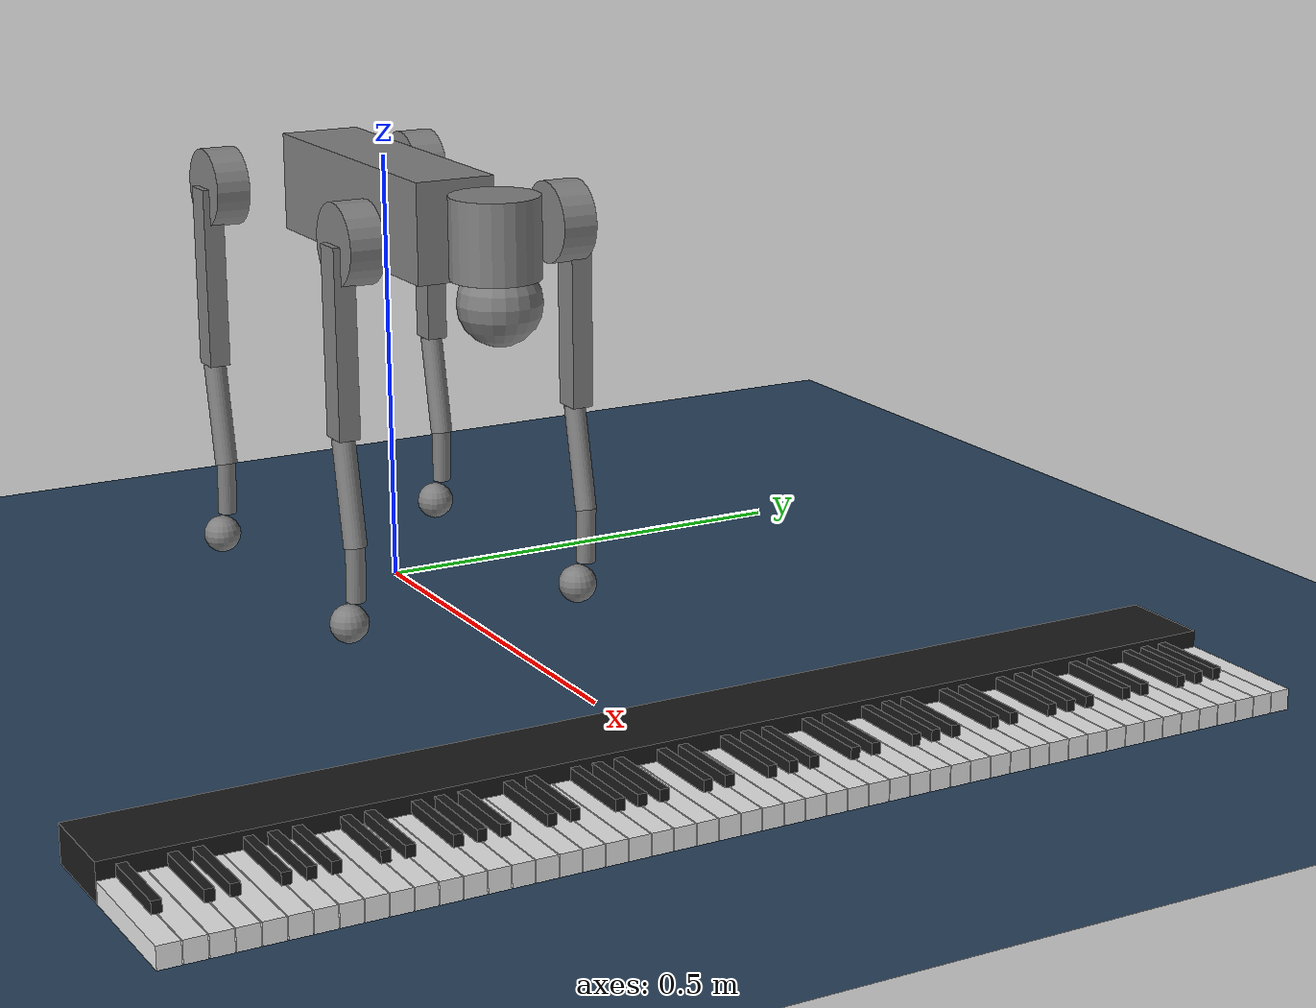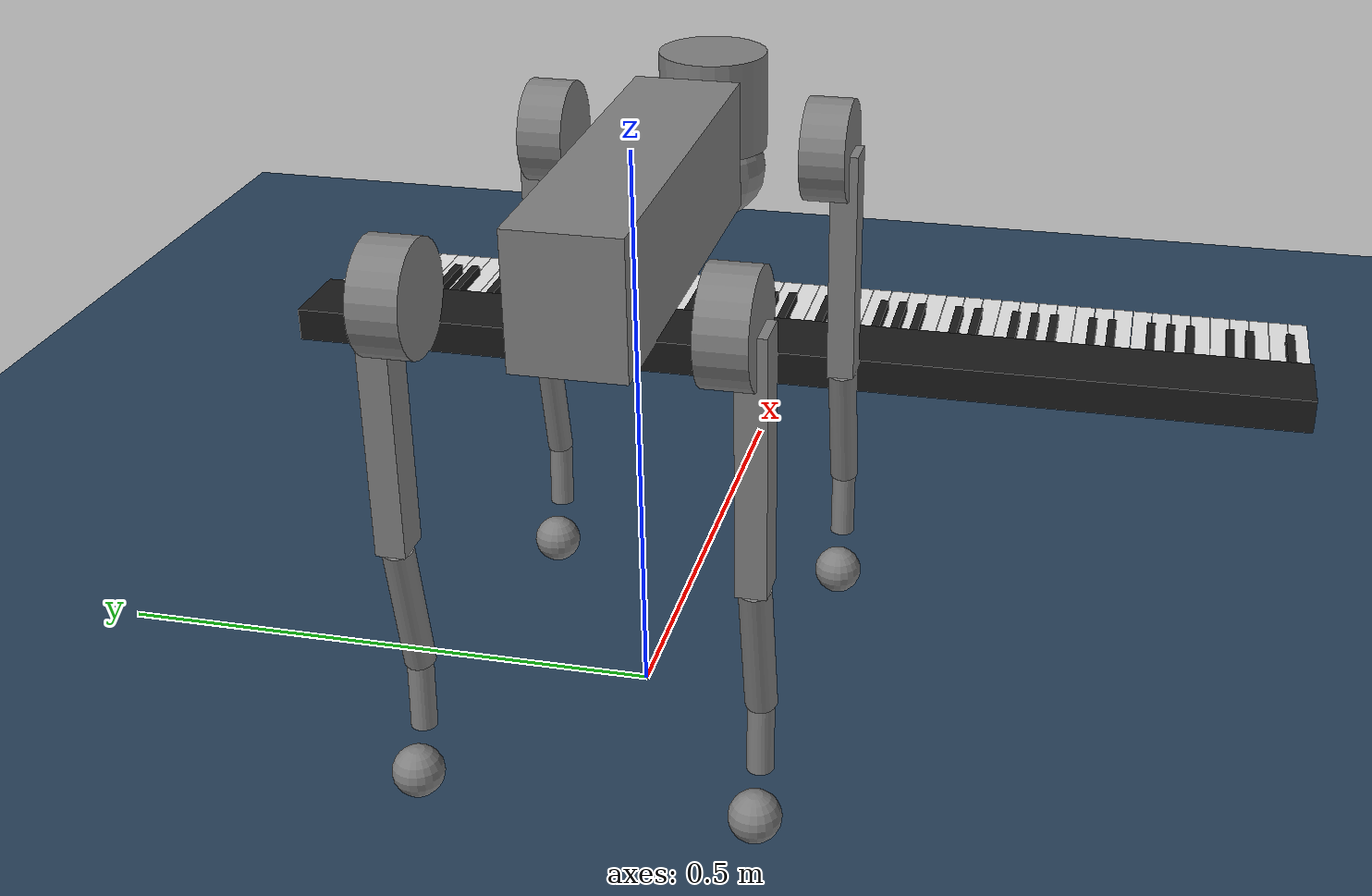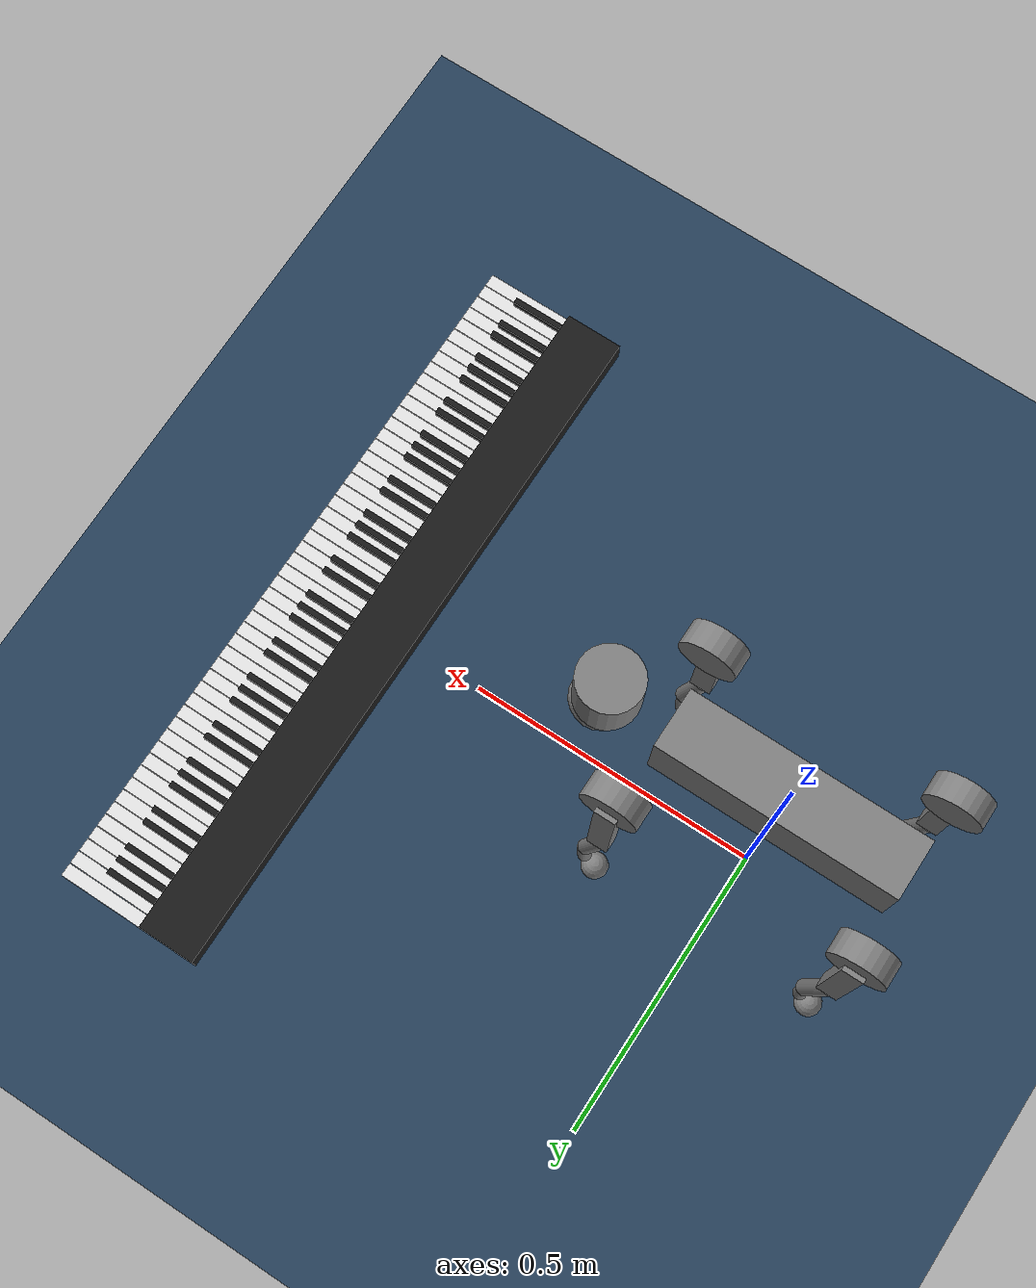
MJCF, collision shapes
<mujoco model="paws_with_piano">
  <!-- Visual settings -->
  <visual>
    <headlight diffuse="0.6 0.6 0.6" ambient="0.3 0.3 0.3" specular="0 0 0"/>
    <rgba haze="0.15 0.25 0.35 1"/>
    <global azimuth="-130" elevation="-20"/>
  </visual>

  <statistic center="0 0 0.1" extent="1"/>

  <option gravity="0 0 -9.81" timestep="0.002" integrator="RK4"/>

  <!-- Compiler and assets directory -->
  <compiler angle="radian" meshdir="../unitree_go2/assets" autolimits="true"/>

  <!-- Default settings for piano and robot -->
  <default>
    <!-- Piano defaults -->
    <default class="piano/">
      <joint type="hinge" axis="0 1 0"/>
      <geom type="box" contype="0" conaffinity="1" solref="0.01 1"/>
      <site type="box" group="4" rgba="1 0 0 1"/>
      <default class="piano/white_key">
        <joint pos="-0.075 0 0" stiffness="2" range="0 0.066" springref="-0.017" armature="0.001" damping="0.05"/>
        <geom size="0.075 0.01125 0.01125" material="piano/white" mass="0.04"/>
        <site size="0.075 0.01125 0.01125"/>
      </default>
      <default class="piano/black_key">
        <joint pos="-0.045 0 0" stiffness="2" range="0 0.088" springref="-0.017" armature="0.001" damping="0.05"/>
        <geom size="0.045 0.005 0.009" material="piano/black" mass="0.02"/>
        <site size="0.045 0.005 0.009"/>
      </default>
    </default>

    <!-- Go2 defaults -->
    <default class="go2">
      <geom friction="0.6" margin="0.001" condim="1"/>
      <joint axis="0 1 0" damping="2" armature="0.01" frictionloss="0.2"/>
      <motor ctrlrange="-23.7 23.7"/>
      <default class="abduction">
        <joint axis="1 0 0" range="-1.0472 1.0472"/>
      </default>
      <default class="hip">
        <default class="front_hip">
          <joint range="-1.5708 3.4907"/>
        </default>
        <default class="back_hip">
          <joint range="-0.5236 4.5379"/>
        </default>
      </default>
      <default class="knee">
        <joint range="-2.7227 -0.83776"/>
        <motor ctrlrange="-45.43 45.43"/>
      </default>
      <default class="visual">
        <geom type="mesh" contype="0" conaffinity="0" group="2"/>
      </default>
      <default class="collision">
        <geom group="3"/>
      </default>
      <default class="foot">
        <geom size="0.022" pos="-0.002 0 -0.213" priority="1" solimp="0.015 1 0.022" condim="6" friction="0.8 0.02 0.01"/>
      </default>
    </default>
  </default>

  <asset>
    <!-- Go2 materials and meshes -->
    <material name="go2/metal" rgba=".9 .95 .95 1"/>
    <material name="go2/black" rgba="0 0 0 1"/>
    <material name="go2/white" rgba="1 1 1 1"/>
    <material name="go2/gray" rgba="0.671705 0.692426 0.774270 1"/>
    <mesh file="base_0.obj"/>
    <mesh file="base_1.obj"/>
    <mesh file="base_2.obj"/>
    <mesh file="base_3.obj"/>
    <mesh file="base_4.obj"/>
    <mesh file="hip_0.obj"/>
    <mesh file="hip_1.obj"/>
    <mesh file="thigh_0.obj"/>
    <mesh file="thigh_1.obj"/>
    <mesh file="thigh_mirror_0.obj"/>
    <mesh file="thigh_mirror_1.obj"/>
    <mesh file="calf_0.obj"/>
    <mesh file="calf_1.obj"/>
    <mesh file="calf_mirror_0.obj"/>
    <mesh file="calf_mirror_1.obj"/>
    <mesh file="foot.obj"/>

    <!-- Piano and environment materials -->
    <texture type="skybox" builtin="gradient" rgb1="0.3 0.5 0.7" rgb2="0 0 0" width="512" height="3072"/>
    <texture type="2d" name="groundplane" builtin="checker" mark="edge" rgb1="0.2 0.3 0.4" rgb2="0.1 0.2 0.3" markrgb="0.8 0.8 0.8" width="300" height="300"/>
    <material name="groundplane" texture="groundplane" texuniform="true" texrepeat="5 5" reflectance="0.2"/>
    <material name="piano/white" class="piano/" rgba="0.9 0.9 0.9 1"/>
    <material name="piano/black" class="piano/" rgba="0.1 0.1 0.1 1" shininess="1" reflectance="0.2"/>
    <material name="piano/base" class="piano/" rgba="0.1 0.1 0.1 1" shininess="1"/>
  </asset>

  <!-- World body -->
  <worldbody>
    <light pos="0 0 1.5" dir="0 0 -1" directional="true"/>
    <geom name="floor" size="0 0 0.05" type="plane" material="groundplane"/>
    <camera name="paws_and_piano_cam" pos="1.5 0 0.75" xyaxes="0 -1 0 0.33 0 1"/>

    <!-- Go2 robot body -->
    <body name="base" pos="0 0 0.445" childclass="go2">
      <inertial pos="0.021112 0 -0.005366" quat="-0.000543471 0.713435 -0.00173769 0.700719" mass="6.921" diaginertia="0.107027 0.0980771 0.0244531"/>
      <freejoint/>
      <geom mesh="base_0" material="go2/black" class="visual"/>
      <geom mesh="base_1" material="go2/black" class="visual"/>
      <geom mesh="base_2" material="go2/black" class="visual"/>
      <geom mesh="base_3" material="go2/white" class="visual"/>
      <geom mesh="base_4" material="go2/gray" class="visual"/>
      <geom size="0.1881 0.04675 0.057" type="box" class="collision"/>
      <geom size="0.05 0.045" pos="0.285 0 0.01" type="cylinder" class="collision"/>
      <geom size="0.047" pos="0.293 0 -0.06" class="collision"/>
      <site name="imu" pos="-0.02557 0 0.04232"/>
      <body name="FL_hip" pos="0.1934 0.0465 0">
        <inertial pos="-0.0054 0.00194 -0.000105" quat="0.497014 0.499245 0.505462 0.498237" mass="0.678" diaginertia="0.00088403 0.000596003 0.000479967"/>
        <joint name="FL_hip_joint" class="abduction"/>
        <geom mesh="hip_0" material="go2/metal" class="visual"/>
        <geom mesh="hip_1" material="go2/gray" class="visual"/>
        <geom size="0.046 0.02" pos="0 0.08 0" quat="1 1 0 0" type="cylinder" class="collision"/>
        <body name="FL_thigh" pos="0 0.0955 0">
          <inertial pos="-0.00374 -0.0223 -0.0327" quat="0.829533 0.0847635 -0.0200632 0.551623" mass="1.152" diaginertia="0.00594973 0.00584149 0.000878787"/>
          <joint name="FL_thigh_joint" class="front_hip"/>
          <geom mesh="thigh_0" material="go2/metal" class="visual"/>
          <geom mesh="thigh_1" material="go2/gray" class="visual"/>
          <geom size="0.1065 0.01225 0.017" pos="0 0 -0.1065" quat="0.707107 0 0.707107 0" type="box" class="collision"/>
          <body name="FL_calf" pos="0 0 -0.213">
            <inertial pos="0.00629595 -0.000622121 -0.141417" quat="0.710672 0.00154099 -0.00450087 0.703508" mass="0.241352" diaginertia="0.0014901 0.00146356 5.31397e-05"/>
            <joint name="FL_calf_joint" class="knee"/>
            <geom mesh="calf_0" material="go2/gray" class="visual"/>
            <geom mesh="calf_1" material="go2/black" class="visual"/>
            <geom size="0.012 0.06" pos="0.008 0 -0.06" quat="0.994493 0 -0.104807 0" type="cylinder" class="collision"/>
            <geom size="0.011 0.0325" pos="0.02 0 -0.148" quat="0.999688 0 0.0249974 0" type="cylinder" class="collision"/>
            <geom pos="0 0 -0.213" mesh="foot" class="visual" material="go2/black"/>
            <geom name="FL" class="foot"/>
          </body>
        </body>
      </body>
      <body name="FR_hip" pos="0.1934 -0.0465 0">
        <inertial pos="-0.0054 -0.00194 -0.000105" quat="0.498237 0.505462 0.499245 0.497014" mass="0.678" diaginertia="0.00088403 0.000596003 0.000479967"/>
        <joint name="FR_hip_joint" class="abduction"/>
        <geom mesh="hip_0" material="go2/metal" class="visual" quat="4.63268e-05 1 0 0"/>
        <geom mesh="hip_1" material="go2/gray" class="visual" quat="4.63268e-05 1 0 0"/>
        <geom size="0.046 0.02" pos="0 -0.08 0" quat="0.707107 0.707107 0 0" type="cylinder" class="collision"/>
        <body name="FR_thigh" pos="0 -0.0955 0">
          <inertial pos="-0.00374 0.0223 -0.0327" quat="0.551623 -0.0200632 0.0847635 0.829533" mass="1.152" diaginertia="0.00594973 0.00584149 0.000878787"/>
          <joint name="FR_thigh_joint" class="front_hip"/>
          <geom mesh="thigh_mirror_0" material="go2/metal" class="visual"/>
          <geom mesh="thigh_mirror_1" material="go2/gray" class="visual"/>
          <geom size="0.1065 0.01225 0.017" pos="0 0 -0.1065" quat="0.707107 0 0.707107 0" type="box" class="collision"/>
          <body name="FR_calf" pos="0 0 -0.213">
            <inertial pos="0.00629595 0.000622121 -0.141417" quat="0.703508 -0.00450087 0.00154099 0.710672" mass="0.241352" diaginertia="0.0014901 0.00146356 5.31397e-05"/>
            <joint name="FR_calf_joint" class="knee"/>
            <geom mesh="calf_mirror_0" material="go2/gray" class="visual"/>
            <geom mesh="calf_mirror_1" material="go2/black" class="visual"/>
            <geom size="0.013 0.06" pos="0.01 0 -0.06" quat="0.995004 0 -0.0998334 0" type="cylinder" class="collision"/>
            <geom size="0.011 0.0325" pos="0.02 0 -0.148" quat="0.999688 0 0.0249974 0" type="cylinder" class="collision"/>
            <geom pos="0 0 -0.213" mesh="foot" class="visual" material="go2/black"/>
            <geom name="FR" class="foot"/>
          </body>
        </body>
      </body>
      <body name="RL_hip" pos="-0.1934 0.0465 0">
        <inertial pos="0.0054 0.00194 -0.000105" quat="0.505462 0.498237 0.497014 0.499245" mass="0.678" diaginertia="0.00088403 0.000596003 0.000479967"/>
        <joint name="RL_hip_joint" class="abduction"/>
        <geom mesh="hip_0" material="go2/metal" class="visual" quat="4.63268e-05 0 1 0"/>
        <geom mesh="hip_1" material="go2/gray" class="visual" quat="4.63268e-05 0 1 0"/>
        <geom size="0.046 0.02" pos="0 0.08 0" quat="0.707107 0.707107 0 0" type="cylinder" class="collision"/>
        <body name="RL_thigh" pos="0 0.0955 0">
          <inertial pos="-0.00374 -0.0223 -0.0327" quat="0.829533 0.0847635 -0.0200632 0.551623" mass="1.152" diaginertia="0.00594973 0.00584149 0.000878787"/>
          <joint name="RL_thigh_joint" class="back_hip"/>
          <geom mesh="thigh_0" material="go2/metal" class="visual"/>
          <geom mesh="thigh_1" material="go2/gray" class="visual"/>
          <geom size="0.1065 0.01225 0.017" pos="0 0 -0.1065" quat="0.707107 0 0.707107 0" type="box" class="collision"/>
          <body name="RL_calf" pos="0 0 -0.213">
            <inertial pos="0.00629595 -0.000622121 -0.141417" quat="0.710672 0.00154099 -0.00450087 0.703508" mass="0.241352" diaginertia="0.0014901 0.00146356 5.31397e-05"/>
            <joint name="RL_calf_joint" class="knee"/>
            <geom mesh="calf_0" material="go2/gray" class="visual"/>
            <geom mesh="calf_1" material="go2/black" class="visual"/>
            <geom size="0.013 0.06" pos="0.01 0 -0.06" quat="0.995004 0 -0.0998334 0" type="cylinder" class="collision"/>
            <geom size="0.011 0.0325" pos="0.02 0 -0.148" quat="0.999688 0 0.0249974 0" type="cylinder" class="collision"/>
            <geom pos="0 0 -0.213" mesh="foot" class="visual" material="go2/black"/>
            <geom name="RL" class="foot"/>
          </body>
        </body>
      </body>
      <body name="RR_hip" pos="-0.1934 -0.0465 0">
        <inertial pos="0.0054 -0.00194 -0.000105" quat="0.499245 0.497014 0.498237 0.505462" mass="0.678" diaginertia="0.00088403 0.000596003 0.000479967"/>
        <joint name="RR_hip_joint" class="abduction"/>
        <geom mesh="hip_0" material="go2/metal" class="visual" quat="2.14617e-09 4.63268e-05 4.63268e-05 -1"/>
        <geom mesh="hip_1" material="go2/gray" class="visual" quat="2.14617e-09 4.63268e-05 4.63268e-05 -1"/>
        <geom size="0.046 0.02" pos="0 -0.08 0" quat="0.707107 0.707107 0 0" type="cylinder" class="collision"/>
        <body name="RR_thigh" pos="0 -0.0955 0">
          <inertial pos="-0.00374 0.0223 -0.0327" quat="0.551623 -0.0200632 0.0847635 0.829533" mass="1.152" diaginertia="0.00594973 0.00584149 0.000878787"/>
          <joint name="RR_thigh_joint" class="back_hip"/>
          <geom mesh="thigh_mirror_0" material="go2/metal" class="visual"/>
          <geom mesh="thigh_mirror_1" material="go2/gray" class="visual"/>
          <geom size="0.1065 0.01225 0.017" pos="0 0 -0.1065" quat="0.707107 0 0.707107 0" type="box" class="collision"/>
          <body name="RR_calf" pos="0 0 -0.213">
            <inertial pos="0.00629595 0.000622121 -0.141417" quat="0.703508 -0.00450087 0.00154099 0.710672" mass="0.241352" diaginertia="0.0014901 0.00146356 5.31397e-05"/>
            <joint name="RR_calf_joint" class="knee"/>
            <geom mesh="calf_mirror_0" material="go2/gray" class="visual"/>
            <geom mesh="calf_mirror_1" material="go2/black" class="visual"/>
            <geom size="0.013 0.06" pos="0.01 0 -0.06" quat="0.995004 0 -0.0998334 0" type="cylinder" class="collision"/>
            <geom size="0.011 0.0325" pos="0.02 0 -0.148" quat="0.999688 0 0.0249974 0" type="cylinder" class="collision"/>
            <geom pos="0 0 -0.213" mesh="foot" class="visual" material="go2/black"/>
            <geom name="RR" class="foot"/>
          </body>
        </body>
      </body>
    </body>
    <!-- Full 88-key piano -->
    <body name="piano_root" pos="0.8 0 0">
      <body name="piano/base" pos="-0.127 0 0.02">
        <geom name="piano//unnamed_geom_0" class="piano/" type="box" size="0.05 0.6105 0.02" material="piano/base"/>
      </body>

      <body name="piano/white_key_0"  pos="0 -0.59925 0.01125">
        <geom  name="piano/white_key_geom_0"  class="piano/white_key"/>
        <joint name="piano/white_joint_0"      class="piano/white_key"/>
        <site  name="piano/white_key_site_0" class="piano/white_key"/>
      </body>
      <body name="piano/black_key_1"  pos="-0.03 -0.5875 0.026">
        <geom  name="piano/black_key_geom_1"  class="piano/black_key"/>
        <joint name="piano/black_joint_1"      class="piano/black_key"/>
        <site  name="piano/black_key_site_1" class="piano/black_key"/>
      </body>
      <body name="piano/white_key_2"  pos="0 -0.57575 0.01125">
        <geom  name="piano/white_key_geom_2"  class="piano/white_key"/>
        <joint name="piano/white_joint_2"      class="piano/white_key"/>
        <site  name="piano/white_key_site_2" class="piano/white_key"/>
      </body>
      <body name="piano/white_key_3"  pos="0 -0.55225 0.01125">
        <geom  name="piano/white_key_geom_3"  class="piano/white_key"/>
        <joint name="piano/white_joint_3"      class="piano/white_key"/>
        <site  name="piano/white_key_site_3" class="piano/white_key"/>
      </body>
      <body name="piano/black_key_4"  pos="-0.03 -0.54 0.026">
        <geom  name="piano/black_key_geom_4"  class="piano/black_key"/>
        <joint name="piano/black_joint_4"      class="piano/black_key"/>
        <site  name="piano/black_key_site_4" class="piano/black_key"/>
      </body>
      <body name="piano/white_key_5"  pos="0 -0.52875 0.01125">
        <geom  name="piano/white_key_geom_5"  class="piano/white_key"/>
        <joint name="piano/white_joint_5"      class="piano/white_key"/>
        <site  name="piano/white_key_site_5" class="piano/white_key"/>
      </body>
      <body name="piano/black_key_6"  pos="-0.03 -0.5165 0.026">
        <geom  name="piano/black_key_geom_6"  class="piano/black_key"/>
        <joint name="piano/black_joint_6"      class="piano/black_key"/>
        <site  name="piano/black_key_site_6" class="piano/black_key"/>
      </body>
      <body name="piano/white_key_7"  pos="0 -0.50525 0.01125">
        <geom  name="piano/white_key_geom_7"  class="piano/white_key"/>
        <joint name="piano/white_joint_7"      class="piano/white_key"/>
        <site  name="piano/white_key_site_7" class="piano/white_key"/>
      </body>
      <body name="piano/white_key_8"  pos="0 -0.48175 0.01125">
        <geom  name="piano/white_key_geom_8"  class="piano/white_key"/>
        <joint name="piano/white_joint_8"      class="piano/white_key"/>
        <site  name="piano/white_key_site_8" class="piano/white_key"/>
      </body>
      <body name="piano/black_key_9"  pos="-0.03 -0.4695 0.026">
        <geom  name="piano/black_key_geom_9"  class="piano/black_key"/>
        <joint name="piano/black_joint_9"      class="piano/black_key"/>
        <site  name="piano/black_key_site_9" class="piano/black_key"/>
      </body>
      <body name="piano/white_key_10" pos="0 -0.45825 0.01125">
        <geom  name="piano/white_key_geom_10" class="piano/white_key"/>
        <joint name="piano/white_joint_10"     class="piano/white_key"/>
        <site  name="piano/white_key_site_10" class="piano/white_key"/>
      </body>
      <body name="piano/black_key_11" pos="-0.03 -0.446 0.026">
        <geom  name="piano/black_key_geom_11" class="piano/black_key"/>
        <joint name="piano/black_joint_11"     class="piano/black_key"/>
        <site  name="piano/black_key_site_11" class="piano/black_key"/>
      </body>
      <body name="piano/white_key_12" pos="0 -0.43475 0.01125">
        <geom  name="piano/white_key_geom_12" class="piano/white_key"/>
        <joint name="piano/white_joint_12"     class="piano/white_key"/>
        <site  name="piano/white_key_site_12" class="piano/white_key"/>
      </body>
      <body name="piano/black_key_13" pos="-0.03 -0.4225 0.026">
        <geom  name="piano/black_key_geom_13" class="piano/black_key"/>
        <joint name="piano/black_joint_13"     class="piano/black_key"/>
        <site  name="piano/black_key_site_13" class="piano/black_key"/>
      </body>
      <body name="piano/white_key_14" pos="0 -0.41125 0.01125">
        <geom  name="piano/white_key_geom_14" class="piano/white_key"/>
        <joint name="piano/white_joint_14"     class="piano/white_key"/>
        <site  name="piano/white_key_site_14" class="piano/white_key"/>
      </body>
      <body name="piano/white_key_15" pos="0 -0.38775 0.01125">
        <geom  name="piano/white_key_geom_15" class="piano/white_key"/>
        <joint name="piano/white_joint_15"     class="piano/white_key"/>
        <site  name="piano/white_key_site_15" class="piano/white_key"/>
      </body>
      <body name="piano/black_key_16" pos="-0.03 -0.3755 0.026">
        <geom  name="piano/black_key_geom_16" class="piano/black_key"/>
        <joint name="piano/black_joint_16"     class="piano/black_key"/>
        <site  name="piano/black_key_site_16" class="piano/black_key"/>
      </body>
      <body name="piano/white_key_17" pos="0 -0.36425 0.01125">
        <geom  name="piano/white_key_geom_17" class="piano/white_key"/>
        <joint name="piano/white_joint_17"     class="piano/white_key"/>
        <site  name="piano/white_key_site_17" class="piano/white_key"/>
      </body>
      <body name="piano/black_key_18" pos="-0.03 -0.352 0.026">
        <geom  name="piano/black_key_geom_18" class="piano/black_key"/>
        <joint name="piano/black_joint_18"     class="piano/black_key"/>
        <site  name="piano/black_key_site_18" class="piano/black_key"/>
      </body>
      <body name="piano/white_key_19" pos="0 -0.34075 0.01125">
        <geom  name="piano/white_key_geom_19" class="piano/white_key"/>
        <joint name="piano/white_joint_19"     class="piano/white_key"/>
        <site  name="piano/white_key_site_19" class="piano/white_key"/>
      </body>
      <body name="piano/white_key_20" pos="0 -0.31725 0.01125">
        <geom  name="piano/white_key_geom_20" class="piano/white_key"/>
        <joint name="piano/white_joint_20"     class="piano/white_key"/>
        <site  name="piano/white_key_site_20" class="piano/white_key"/>
      </body>
      <body name="piano/black_key_21" pos="-0.03 -0.305 0.026">
        <geom  name="piano/black_key_geom_21" class="piano/black_key"/>
        <joint name="piano/black_joint_21"     class="piano/black_key"/>
        <site  name="piano/black_key_site_21" class="piano/black_key"/>
      </body>
      <body name="piano/white_key_22" pos="0 -0.29375 0.01125">
        <geom  name="piano/white_key_geom_22" class="piano/white_key"/>
        <joint name="piano/white_joint_22"     class="piano/white_key"/>
        <site  name="piano/white_key_site_22" class="piano/white_key"/>
      </body>
      <body name="piano/black_key_23" pos="-0.03 -0.2815 0.026">
        <geom  name="piano/black_key_geom_23" class="piano/black_key"/>
        <joint name="piano/black_joint_23"     class="piano/black_key"/>
        <site  name="piano/black_key_site_23" class="piano/black_key"/>
      </body>
      <body name="piano/white_key_24" pos="0 -0.27025 0.01125">
        <geom  name="piano/white_key_geom_24" class="piano/white_key"/>
        <joint name="piano/white_joint_24"     class="piano/white_key"/>
        <site  name="piano/white_key_site_24" class="piano/white_key"/>
      </body>
      <body name="piano/black_key_25" pos="-0.03 -0.258 0.026">
        <geom  name="piano/black_key_geom_25" class="piano/black_key"/>
        <joint name="piano/black_joint_25"     class="piano/black_key"/>
        <site  name="piano/black_key_site_25" class="piano/black_key"/>
      </body>
      <body name="piano/white_key_26" pos="0 -0.24675 0.01125">
        <geom  name="piano/white_key_geom_26" class="piano/white_key"/>
        <joint name="piano/white_joint_26"     class="piano/white_key"/>
        <site  name="piano/white_key_site_26" class="piano/white_key"/>
      </body>
      <body name="piano/white_key_27" pos="0 -0.22325 0.01125">
        <geom  name="piano/white_key_geom_27" class="piano/white_key"/>
        <joint name="piano/white_joint_27"     class="piano/white_key"/>
        <site  name="piano/white_key_site_27" class="piano/white_key"/>
      </body>
      <body name="piano/black_key_28" pos="-0.03 -0.211 0.026">
        <geom  name="piano/black_key_geom_28" class="piano/black_key"/>
        <joint name="piano/black_joint_28"     class="piano/black_key"/>
        <site  name="piano/black_key_site_28" class="piano/black_key"/>
      </body>
      <body name="piano/white_key_29" pos="0 -0.19975 0.01125">
        <geom  name="piano/white_key_geom_29" class="piano/white_key"/>
        <joint name="piano/white_joint_29"     class="piano/white_key"/>
        <site  name="piano/white_key_site_29" class="piano/white_key"/>
      </body>
      <body name="piano/black_key_30" pos="-0.03 -0.1875 0.026">
        <geom  name="piano/black_key_geom_30" class="piano/black_key"/>
        <joint name="piano/black_joint_30"     class="piano/black_key"/>
        <site  name="piano/black_key_site_30" class="piano/black_key"/>
      </body>
      <body name="piano/white_key_31" pos="0 -0.17625 0.01125">
        <geom  name="piano/white_key_geom_31" class="piano/white_key"/>
        <joint name="piano/white_joint_31"     class="piano/white_key"/>
        <site  name="piano/white_key_site_31" class="piano/white_key"/>
      </body>
      <body name="piano/white_key_32" pos="0 -0.15275 0.01125">
        <geom  name="piano/white_key_geom_32" class="piano/white_key"/>
        <joint name="piano/white_joint_32"     class="piano/white_key"/>
        <site  name="piano/white_key_site_32" class="piano/white_key"/>
      </body>
      <body name="piano/black_key_33" pos="-0.03 -0.1405 0.026">
        <geom  name="piano/black_key_geom_33" class="piano/black_key"/>
        <joint name="piano/black_joint_33"     class="piano/black_key"/>
        <site  name="piano/black_key_site_33" class="piano/black_key"/>
      </body>
      <body name="piano/white_key_34" pos="0 -0.12925 0.01125">
        <geom  name="piano/white_key_geom_34" class="piano/white_key"/>
        <joint name="piano/white_joint_34"     class="piano/white_key"/>
        <site  name="piano/white_key_site_34" class="piano/white_key"/>
      </body>
      <body name="piano/black_key_35" pos="-0.03 -0.117 0.026">
        <geom  name="piano/black_key_geom_35" class="piano/black_key"/>
        <joint name="piano/black_joint_35"     class="piano/black_key"/>
        <site  name="piano/black_key_site_35" class="piano/black_key"/>
      </body>
      <body name="piano/white_key_36" pos="0 -0.10575 0.01125">
        <geom  name="piano/white_key_geom_36" class="piano/white_key"/>
        <joint name="piano/white_joint_36"     class="piano/white_key"/>
        <site  name="piano/white_key_site_36" class="piano/white_key"/>
      </body>
      <body name="piano/black_key_37" pos="-0.03 -0.0935 0.026">
        <geom  name="piano/black_key_geom_37" class="piano/black_key"/>
        <joint name="piano/black_joint_37"     class="piano/black_key"/>
        <site  name="piano/black_key_site_37" class="piano/black_key"/>
      </body>
      <body name="piano/white_key_38" pos="0 -0.08225 0.01125">
        <geom  name="piano/white_key_geom_38" class="piano/white_key"/>
        <joint name="piano/white_joint_38"     class="piano/white_key"/>
        <site  name="piano/white_key_site_38" class="piano/white_key"/>
      </body>
      <body name="piano/white_key_39" pos="0 -0.05875 0.01125">
        <geom  name="piano/white_key_geom_39" class="piano/white_key"/>
        <joint name="piano/white_joint_39"     class="piano/white_key"/>
        <site  name="piano/white_key_site_39" class="piano/white_key"/>
      </body>
      <body name="piano/black_key_40" pos="-0.03 -0.0465 0.026">
        <geom  name="piano/black_key_geom_40" class="piano/black_key"/>
        <joint name="piano/black_joint_40"     class="piano/black_key"/>
        <site  name="piano/black_key_site_40" class="piano/black_key"/>
      </body>
      <body name="piano/white_key_41" pos="0 -0.03525 0.01125">
        <geom  name="piano/white_key_geom_41" class="piano/white_key"/>
        <joint name="piano/white_joint_41"     class="piano/white_key"/>
        <site  name="piano/white_key_site_41" class="piano/white_key"/>
      </body>
      <body name="piano/black_key_42" pos="-0.03 -0.023 0.026">
        <geom  name="piano/black_key_geom_42" class="piano/black_key"/>
        <joint name="piano/black_joint_42"     class="piano/black_key"/>
        <site  name="piano/black_key_site_42" class="piano/black_key"/>
      </body>
      <body name="piano/white_key_43" pos="0 -0.01175 0.01125">
        <geom  name="piano/white_key_geom_43" class="piano/white_key"/>
        <joint name="piano/white_joint_43"     class="piano/white_key"/>
        <site  name="piano/white_key_site_43" class="piano/white_key"/>
      </body>
      <body name="piano/white_key_44" pos="0 0.01175 0.01125">
        <geom  name="piano/white_key_geom_44" class="piano/white_key"/>
        <joint name="piano/white_joint_44"     class="piano/white_key"/>
        <site  name="piano/white_key_site_44" class="piano/white_key"/>
      </body>
      <body name="piano/black_key_45" pos="-0.03 0.024 0.026">
        <geom  name="piano/black_key_geom_45" class="piano/black_key"/>
        <joint name="piano/black_joint_45"     class="piano/black_key"/>
        <site  name="piano/black_key_site_45" class="piano/black_key"/>
      </body>
      <body name="piano/white_key_46" pos="0 0.03525 0.01125">
        <geom  name="piano/white_key_geom_46" class="piano/white_key"/>
        <joint name="piano/white_joint_46"     class="piano/white_key"/>
        <site  name="piano/white_key_site_46" class="piano/white_key"/>
      </body>
      <body name="piano/black_key_47" pos="-0.03 0.0475 0.026">
        <geom  name="piano/black_key_geom_47" class="piano/black_key"/>
        <joint name="piano/black_joint_47"     class="piano/black_key"/>
        <site  name="piano/black_key_site_47" class="piano/black_key"/>
      </body>
      <body name="piano/white_key_48" pos="0 0.05875 0.01125">
        <geom  name="piano/white_key_geom_48" class="piano/white_key"/>
        <joint name="piano/white_joint_48"     class="piano/white_key"/>
        <site  name="piano/white_key_site_48" class="piano/white_key"/>
      </body>
      <body name="piano/black_key_49" pos="-0.03 0.071 0.026">
        <geom  name="piano/black_key_geom_49" class="piano/black_key"/>
        <joint name="piano/black_joint_49"     class="piano/black_key"/>
        <site  name="piano/black_key_site_49" class="piano/black_key"/>
      </body>
      <body name="piano/white_key_50" pos="0 0.08225 0.01125">
        <geom  name="piano/white_key_geom_50" class="piano/white_key"/>
        <joint name="piano/white_joint_50"     class="piano/white_key"/>
        <site  name="piano/white_key_site_50" class="piano/white_key"/>
      </body>
      <body name="piano/white_key_51" pos="0 0.10575 0.01125">
        <geom  name="piano/white_key_geom_51" class="piano/white_key"/>
        <joint name="piano/white_joint_51"     class="piano/white_key"/>
        <site  name="piano/white_key_site_51" class="piano/white_key"/>
      </body>
      <body name="piano/black_key_52" pos="-0.03 0.118 0.026">
        <geom  name="piano/black_key_geom_52" class="piano/black_key"/>
        <joint name="piano/black_joint_52"     class="piano/black_key"/>
        <site  name="piano/black_key_site_52" class="piano/black_key"/>
      </body>
      <body name="piano/white_key_53" pos="0 0.12925 0.01125">
        <geom  name="piano/white_key_geom_53" class="piano/white_key"/>
        <joint name="piano/white_joint_53"     class="piano/white_key"/>
        <site  name="piano/white_key_site_53" class="piano/white_key"/>
      </body>
      <body name="piano/black_key_54" pos="-0.03 0.1415 0.026">
        <geom  name="piano/black_key_geom_54" class="piano/black_key"/>
        <joint name="piano/black_joint_54"     class="piano/black_key"/>
        <site  name="piano/black_key_site_54" class="piano/black_key"/>
      </body>
      <body name="piano/white_key_55" pos="0 0.15275 0.01125">
        <geom  name="piano/white_key_geom_55" class="piano/white_key"/>
        <joint name="piano/white_joint_55"     class="piano/white_key"/>
        <site  name="piano/white_key_site_55" class="piano/white_key"/>
      </body>
      <body name="piano/white_key_56" pos="0 0.17625 0.01125">
        <geom  name="piano/white_key_geom_56" class="piano/white_key"/>
        <joint name="piano/white_joint_56"     class="piano/white_key"/>
        <site  name="piano/white_key_site_56" class="piano/white_key"/>
      </body>
      <body name="piano/black_key_57" pos="-0.03 0.1885 0.026">
        <geom  name="piano/black_key_geom_57" class="piano/black_key"/>
        <joint name="piano/black_joint_57"     class="piano/black_key"/>
        <site  name="piano/black_key_site_57" class="piano/black_key"/>
      </body>
      <body name="piano/white_key_58" pos="0 0.19975 0.01125">
        <geom  name="piano/white_key_geom_58" class="piano/white_key"/>
        <joint name="piano/white_joint_58"     class="piano/white_key"/>
        <site  name="piano/white_key_site_58" class="piano/white_key"/>
      </body>
      <body name="piano/black_key_59" pos="-0.03 0.212 0.026">
        <geom  name="piano/black_key_geom_59" class="piano/black_key"/>
        <joint name="piano/black_joint_59"      class="piano/black_key"/>
        <site  name="piano/black_key_site_59"   class="piano/black_key"/>
      </body>
            <body name="piano/white_key_60" pos="0 0.22325 0.01125">
        <geom  name="piano/white_key_geom_60" class="piano/white_key"/>
        <joint name="piano/white_joint_60"      class="piano/white_key"/>
        <site  name="piano/white_key_site_60"  class="piano/white_key"/>
      </body>
      <body name="piano/black_key_61" pos="-0.03 0.2355 0.026">
        <geom  name="piano/black_key_geom_61"  class="piano/black_key"/>
        <joint name="piano/black_joint_61"      class="piano/black_key"/>
        <site  name="piano/black_key_site_61"  class="piano/black_key"/>
      </body>
      <body name="piano/white_key_62" pos="0 0.24675 0.01125">
        <geom  name="piano/white_key_geom_62"  class="piano/white_key"/>
        <joint name="piano/white_joint_62"      class="piano/white_key"/>
        <site  name="piano/white_key_site_62"  class="piano/white_key"/>
      </body>
      <body name="piano/white_key_63" pos="0 0.27025 0.01125">
        <geom  name="piano/white_key_geom_63"  class="piano/white_key"/>
        <joint name="piano/white_joint_63"      class="piano/white_key"/>
        <site  name="piano/white_key_site_63"  class="piano/white_key"/>
      </body>
      <body name="piano/black_key_64" pos="-0.03 0.2825 0.026">
        <geom  name="piano/black_key_geom_64"  class="piano/black_key"/>
        <joint name="piano/black_joint_64"      class="piano/black_key"/>
        <site  name="piano/black_key_site_64"  class="piano/black_key"/>
      </body>
      <body name="piano/white_key_65" pos="0 0.29375 0.01125">
        <geom  name="piano/white_key_geom_65"  class="piano/white_key"/>
        <joint name="piano/white_joint_65"      class="piano/white_key"/>
        <site  name="piano/white_key_site_65"  class="piano/white_key"/>
      </body>
      <body name="piano/black_key_66" pos="-0.03 0.306 0.026">
        <geom  name="piano/black_key_geom_66"  class="piano/black_key"/>
        <joint name="piano/black_joint_66"      class="piano/black_key"/>
        <site  name="piano/black_key_site_66"  class="piano/black_key"/>
      </body>
      <body name="piano/white_key_67" pos="0 0.31725 0.01125">
        <geom  name="piano/white_key_geom_67"  class="piano/white_key"/>
        <joint name="piano/white_joint_67"      class="piano/white_key"/>
        <site  name="piano/white_key_site_67"  class="piano/white_key"/>
      </body>
      <body name="piano/white_key_68" pos="0 0.34075 0.01125">
        <geom  name="piano/white_key_geom_68"  class="piano/white_key"/>
        <joint name="piano/white_joint_68"      class="piano/white_key"/>
        <site  name="piano/white_key_site_68"  class="piano/white_key"/>
      </body>
      <body name="piano/black_key_69" pos="-0.03 0.353 0.026">
        <geom  name="piano/black_key_geom_69"  class="piano/black_key"/>
        <joint name="piano/black_joint_69"      class="piano/black_key"/>
        <site  name="piano/black_key_site_69"  class="piano/black_key"/>
      </body>
      <body name="piano/white_key_70" pos="0 0.36425 0.01125">
        <geom  name="piano/white_key_geom_70"  class="piano/white_key"/>
        <joint name="piano/white_joint_70"      class="piano/white_key"/>
        <site  name="piano/white_key_site_70"  class="piano/white_key"/>
      </body>
      <body name="piano/black_key_71" pos="-0.03 0.3765 0.026">
        <geom  name="piano/black_key_geom_71"  class="piano/black_key"/>
        <joint name="piano/black_joint_71"      class="piano/black_key"/>
        <site  name="piano/black_key_site_71"  class="piano/black_key"/>
      </body>
      <body name="piano/white_key_72" pos="0 0.38775 0.01125">
        <geom  name="piano/white_key_geom_72"  class="piano/white_key"/>
        <joint name="piano/white_joint_72"      class="piano/white_key"/>
        <site  name="piano/white_key_site_72"  class="piano/white_key"/>
      </body>
      <body name="piano/black_key_73" pos="-0.03 0.4 0.026">
        <geom  name="piano/black_key_geom_73"  class="piano/black_key"/>
        <joint name="piano/black_joint_73"      class="piano/black_key"/>
        <site  name="piano/black_key_site_73"  class="piano/black_key"/>
      </body>
      <body name="piano/white_key_74" pos="0 0.41125 0.01125">
        <geom  name="piano/white_key_geom_74"  class="piano/white_key"/>
        <joint name="piano/white_joint_74"      class="piano/white_key"/>
        <site  name="piano/white_key_site_74"  class="piano/white_key"/>
      </body>
      <body name="piano/white_key_75" pos="0 0.43475 0.01125">
        <geom  name="piano/white_key_geom_75"  class="piano/white_key"/>
        <joint name="piano/white_joint_75"      class="piano/white_key"/>
        <site  name="piano/white_key_site_75"  class="piano/white_key"/>
      </body>
      <body name="piano/black_key_76" pos="-0.03 0.447 0.026">
        <geom  name="piano/black_key_geom_76"  class="piano/black_key"/>
        <joint name="piano/black_joint_76"      class="piano/black_key"/>
        <site  name="piano/black_key_site_76"  class="piano/black_key"/>
      </body>
      <body name="piano/white_key_77" pos="0 0.45825 0.01125">
        <geom  name="piano/white_key_geom_77"  class="piano/white_key"/>
        <joint name="piano/white_joint_77"      class="piano/white_key"/>
        <site  name="piano/white_key_site_77"  class="piano/white_key"/>
      </body>
      <body name="piano/black_key_78" pos="-0.03 0.4705 0.026">
        <geom  name="piano/black_key_geom_78"  class="piano/black_key"/>
        <joint name="piano/black_joint_78"      class="piano/black_key"/>
        <site  name="piano/black_key_site_78"  class="piano/black_key"/>
      </body>
      <body name="piano/white_key_79" pos="0 0.48175 0.01125">
        <geom  name="piano/white_key_geom_79"  class="piano/white_key"/>
        <joint name="piano/white_joint_79"      class="piano/white_key"/>
        <site  name="piano/white_key_site_79"  class="piano/white_key"/>
      </body>
      <body name="piano/white_key_80" pos="0 0.50525 0.01125">
        <geom  name="piano/white_key_geom_80"  class="piano/white_key"/>
        <joint name="piano/white_joint_80"      class="piano/white_key"/>
        <site  name="piano/white_key_site_80"  class="piano/white_key"/>
      </body>
      <body name="piano/black_key_81" pos="-0.03 0.5175 0.026">
        <geom  name="piano/black_key_geom_81"  class="piano/black_key"/>
        <joint name="piano/black_joint_81"      class="piano/black_key"/>
        <site  name="piano/black_key_site_81"  class="piano/black_key"/>
      </body>
      <body name="piano/white_key_82" pos="0 0.52875 0.01125">
        <geom  name="piano/white_key_geom_82"  class="piano/white_key"/>
        <joint name="piano/white_joint_82"      class="piano/white_key"/>
        <site  name="piano/white_key_site_82"  class="piano/white_key"/>
      </body>
      <body name="piano/black_key_83" pos="-0.03 0.541 0.026">
        <geom  name="piano/black_key_geom_83"  class="piano/black_key"/>
        <joint name="piano/black_joint_83"      class="piano/black_key"/>
        <site  name="piano/black_key_site_83"  class="piano/black_key"/>
      </body>
      <body name="piano/white_key_84" pos="0 0.55225 0.01125">
        <geom  name="piano/white_key_geom_84"  class="piano/white_key"/>
        <joint name="piano/white_joint_84"      class="piano/white_key"/>
        <site  name="piano/white_key_site_84"  class="piano/white_key"/>
      </body>
      <body name="piano/black_key_85" pos="-0.03 0.5645 0.026">
        <geom  name="piano/black_key_geom_85"  class="piano/black_key"/>
        <joint name="piano/black_joint_85"      class="piano/black_key"/>
        <site  name="piano/black_key_site_85"  class="piano/black_key"/>
      </body>
      <body name="piano/white_key_86" pos="0 0.57575 0.01125">
        <geom  name="piano/white_key_geom_86"  class="piano/white_key"/>
        <joint name="piano/white_joint_86"      class="piano/white_key"/>
        <site  name="piano/white_key_site_86"  class="piano/white_key"/>
      </body>
      <body name="piano/white_key_87" pos="0 0.59925 0.01125">
        <geom  name="piano/white_key_geom_87"  class="piano/white_key"/>
        <joint name="piano/white_joint_87"      class="piano/white_key"/>
        <site  name="piano/white_key_site_87"  class="piano/white_key"/>
      </body>

      <camera name="piano/closeup"    class="piano/" pos="-0.313 0.024 0.455"  xyaxes="0.003 -1 0 0.607 0.002 0.795"/>
      <camera name="piano/left"       class="piano/" pos="0.393 -0.791 0.638" xyaxes="0.808 0.589 0 -0.388 0.533 0.752"/>
      <camera name="piano/right"      class="piano/" pos="0.472 0.598 0.58"  xyaxes="-0.637 0.771 0 -0.51 -0.421 0.75"/>
      <camera name="piano/back"       class="piano/" pos="-0.569 0.008 0.841" xyaxes="-0.009 -1 0 0.783 -0.007 0.622"/>
      <camera name="piano/egocentric" class="piano/" pos="0.417 -0.039 0.717" xyaxes="-0.002 1 0 -0.867 -0.002 0.498"/>
      <camera name="piano/topdown"    class="piano/" fovy="33.9496196739872" pos="0 0 1" quat="1 0 0 1"/>
    </body>
  </worldbody>

<!-- Actuators for the robot -->
  <actuator>
    <motor class="abduction" name="FL_hip" joint="FL_hip_joint"/>
    <motor class="hip" name="FL_thigh" joint="FL_thigh_joint"/>
    <motor class="knee" name="FL_calf" joint="FL_calf_joint"/>
    <motor class="abduction" name="FR_hip" joint="FR_hip_joint"/>
    <motor class="hip" name="FR_thigh" joint="FR_thigh_joint"/>
    <motor class="knee" name="FR_calf" joint="FR_calf_joint"/>
    <motor class="abduction" name="RL_hip" joint="RL_hip_joint"/>
    <motor class="hip" name="RL_thigh" joint="RL_thigh_joint"/>
    <motor class="knee" name="RL_calf" joint="RL_calf_joint"/>
    <motor class="abduction" name="RR_hip" joint="RR_hip_joint"/>
    <motor class="hip" name="RR_thigh" joint="RR_thigh_joint"/>
    <motor class="knee" name="RR_calf" joint="RR_calf_joint"/>
  </actuator>

  <!-- Keyframes for the robot -->
  <keyframe>
    <key name="home" qpos="0 0 0.27 1 0 0 0 0 0.9 -1.8 0 0.9 -1.8 0 0.9 -1.8 0 0.9 -1.8" ctrl="0 0.9 -1.8 0 0.9 -1.8 0 0.9 -1.8 0 0.9 -1.8"/>
  </keyframe>
</mujoco>
